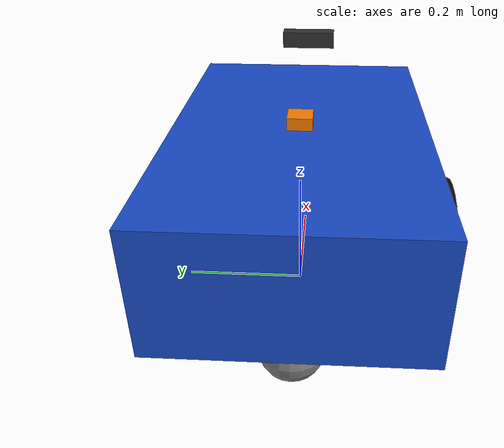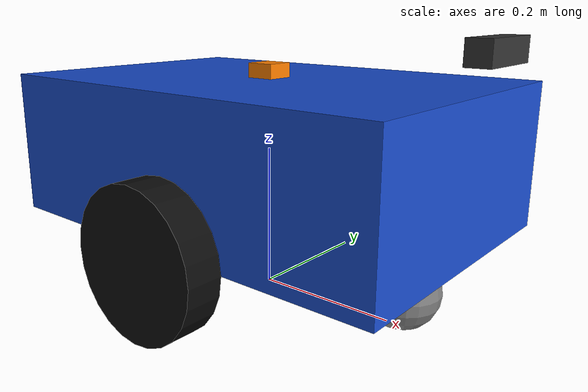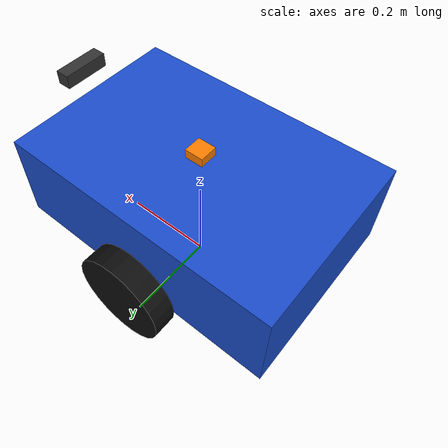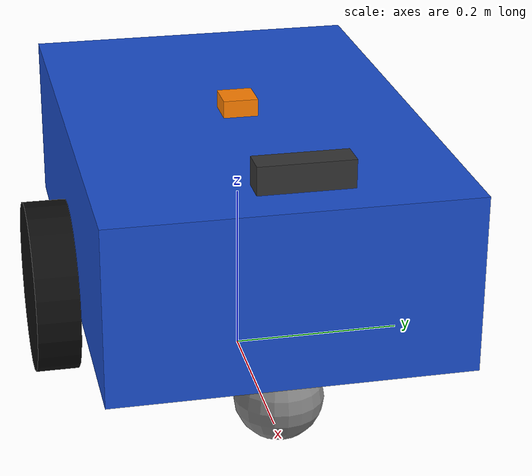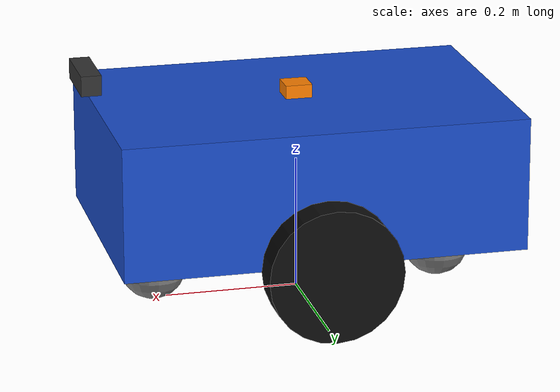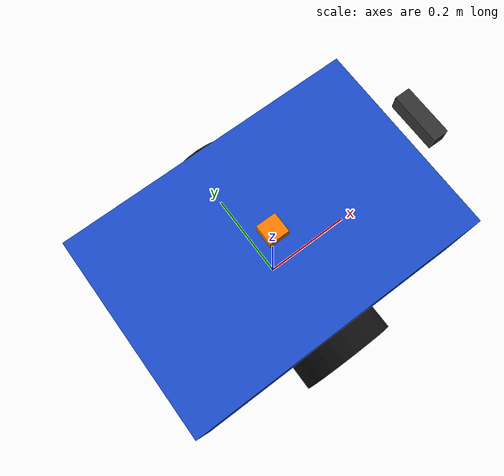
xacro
<?xml version="1.0"?>
<robot name="ugv" xmlns:xacro="http://www.ros.org/wiki/xacro">

    <!-- Base UGV Chassis & Drive Kinematics -->
    <xacro:include filename="$(find ugv_description)/urdf/ugv_base.urdf.xacro" />

    <!-- Vision & Inertial Sensor Modules -->
    <xacro:include filename="$(find ugv_description)/urdf/sensors/camera.urdf.xacro" />
    <xacro:include filename="$(find ugv_description)/urdf/sensors/imu.urdf.xacro" />

</robot>

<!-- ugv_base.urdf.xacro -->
<robot xmlns:xacro="http://www.ros.org/wiki/xacro">

    <xacro:property name="base_length" value="0.6" />
    <xacro:property name="base_width" value="0.4" />
    <xacro:property name="base_height" value="0.2" />
    <xacro:property name="wheel_radius" value="0.1" />
    <xacro:property name="wheel_length" value="0.05" />
    <xacro:property name="wheel_separation" value="0.45" />

    <!-- base_footprint is the 2D projection on the ground -->
    <link name="base_footprint" />

    <link name="base_link">
        <visual>
            <geometry>
                <box size="${base_length} ${base_width} ${base_height}" />
            </geometry>
            <material name="blue">
                <color rgba="0.1 0.3 0.8 1.0" />
            </material>
        </visual>
        <collision>
            <geometry>
                <box size="${base_length} ${base_width} ${base_height}" />
            </geometry>
        </collision>
        <inertial>
            <mass value="15.0" />
            <origin xyz="0 0 0" rpy="0 0 0" />
            <inertia ixx="${(15.0/12.0) * (base_width*base_width + base_height*base_height)}" ixy="0" ixz="0"
                     iyy="${(15.0/12.0) * (base_length*base_length + base_height*base_height)}" iyz="0"
                     izz="${(15.0/12.0) * (base_length*base_length + base_width*base_width)}" />
        </inertial>
    </link>

    <joint name="base_joint" type="fixed">
        <parent link="base_footprint" />
        <child link="base_link" />
        <origin xyz="0 0 ${wheel_radius + base_height / 2.0}" rpy="0 0 0" />
    </joint>

    <!-- Macro for Drive Wheels -->
    <xacro:macro name="wheel" params="prefix y_offset">
        <link name="${prefix}_wheel_link">
            <visual>
                <geometry>
                    <cylinder radius="${wheel_radius}" length="${wheel_length}" />
                </geometry>
                <material name="black">
                    <color rgba="0.05 0.05 0.05 1.0" />
                </material>
            </visual>
            <collision>
                <geometry>
                    <cylinder radius="${wheel_radius}" length="${wheel_length}" />
                </geometry>
            </collision>
            <inertial>
                <mass value="2.0" />
                <origin xyz="0 0 0" rpy="0 0 0" />
                <inertia ixx="${(2.0/12.0)*(3*wheel_radius*wheel_radius + wheel_length*wheel_length)}" ixy="0" ixz="0"
                         iyy="${(2.0/12.0)*(3*wheel_radius*wheel_radius + wheel_length*wheel_length)}" iyz="0"
                         izz="${0.5 * 2.0 * wheel_radius * wheel_radius}" />
            </inertial>
        </link>

        <joint name="${prefix}_wheel_joint" type="continuous">
            <parent link="base_link" />
            <child link="${prefix}_wheel_link" />
            <origin xyz="0 ${y_offset} ${-base_height / 2.0}" rpy="${-pi/2} 0 0" />
            <axis xyz="0 0 1" />
        </joint>

        <gazebo reference="${prefix}_wheel_link">
            <mu1>1.2</mu1>
            <mu2>1.2</mu2>
            <kp>1000000.0</kp>
            <kd>100.0</kd>
        </gazebo>
    </xacro:macro>

    <xacro:wheel prefix="left" y_offset="${wheel_separation / 2.0}" />
    <xacro:wheel prefix="right" y_offset="${-wheel_separation / 2.0}" />

    <!-- Macro for Caster Wheels (Front & Rear) -->
    <xacro:macro name="caster" params="prefix x_offset">
        <link name="${prefix}_caster_wheel_link">
            <visual>
                <geometry>
                    <sphere radius="${wheel_radius / 2.0}" />
                </geometry>
                <material name="grey">
                    <color rgba="0.5 0.5 0.5 1.0" />
                </material>
            </visual>
            <collision>
                <geometry>
                    <sphere radius="${wheel_radius / 2.0}" />
                </geometry>
            </collision>
            <inertial>
                <mass value="0.5" />
                <origin xyz="0 0 0" rpy="0 0 0" />
                <inertia ixx="0.001" ixy="0" ixz="0" iyy="0.001" iyz="0" izz="0.001" />
            </inertial>
        </link>

        <joint name="${prefix}_caster_wheel_joint" type="fixed">
            <parent link="base_link" />
            <child link="${prefix}_caster_wheel_link" />
            <origin xyz="${x_offset} 0 ${-base_height / 2.0 - wheel_radius / 2.0}" rpy="0 0 0" />
        </joint>

        <gazebo reference="${prefix}_caster_wheel_link">
            <mu1>0.05</mu1>
            <mu2>0.05</mu2>
        </gazebo>
    </xacro:macro>

    <xacro:caster prefix="front" x_offset="${base_length / 2.0 - 0.08}" />
    <xacro:caster prefix="rear" x_offset="${-base_length / 2.0 + 0.08}" />

    <!-- Gazebo Harmonic Diff-Drive System Plugin -->
    <gazebo>
        <plugin filename="gz-sim-diff-drive-system" name="gz::sim::systems::DiffDrive">
            <left_joint>left_wheel_joint</left_joint>
            <right_joint>right_wheel_joint</right_joint>
            <wheel_separation>${wheel_separation}</wheel_separation>
            <wheel_radius>${wheel_radius}</wheel_radius>
            <max_linear_acceleration>2.0</max_linear_acceleration>
            <min_linear_acceleration>-2.0</min_linear_acceleration>
            <max_angular_acceleration>3.0</max_angular_acceleration>
            <min_angular_acceleration>-3.0</min_angular_acceleration>
            <max_linear_velocity>1.5</max_linear_velocity>
            <min_linear_velocity>-1.5</min_linear_velocity>
            <max_angular_velocity>2.0</max_angular_velocity>
            <min_angular_velocity>-2.0</min_angular_velocity>
            <topic>/cmd_vel</topic>
            <odom_topic>/diff_drive_controller/odom</odom_topic>
            <tf_topic>/model/ugv/tf</tf_topic>
            <frame_id>odom</frame_id>
            <child_frame_id>base_footprint</child_frame_id>
        </plugin>
    </gazebo>

    <!-- Gazebo Harmonic Joint State Publisher Plugin -->
    <gazebo>
        <plugin filename="gz-sim-joint-state-publisher-system" name="gz::sim::systems::JointStatePublisher">
            <joint_name>left_wheel_joint</joint_name>
            <joint_name>right_wheel_joint</joint_name>
            <topic>/joint_states</topic>
        </plugin>
    </gazebo>

</robot>

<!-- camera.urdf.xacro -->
<robot xmlns:xacro="http://www.ros.org/wiki/xacro">

    <xacro:property name="camera_length" value="0.03" />
    <xacro:property name="camera_width" value="0.10" />
    <xacro:property name="camera_height" value="0.03" />

    <link name="camera_link">
        <visual>
            <geometry>
                <box size="${camera_length} ${camera_width} ${camera_height}" />
            </geometry>
            <material name="dark_grey">
                <color rgba="0.2 0.2 0.2 1.0" />
            </material>
        </visual>
        <collision>
            <geometry>
                <box size="${camera_length} ${camera_width} ${camera_height}" />
            </geometry>
        </collision>
        <inertial>
            <mass value="0.1" />
            <origin xyz="0 0 0" rpy="0 0 0" />
            <inertia ixx="0.0001" ixy="0" ixz="0" iyy="0.0001" iyz="0" izz="0.0001" />
        </inertial>
    </link>

    <joint name="base_camera_joint" type="fixed">
        <parent link="base_link" />
        <child link="camera_link" />
        <origin xyz="${base_length / 2.0 + camera_length / 2.0} 0 ${base_height / 2.0 + 0.05}" rpy="0 0 0" />
    </joint>

    <!-- Standard ROS optical frame convention (X forward -> Z forward, Y left -> -X left, Z up -> -Y down) -->
    <link name="camera_link_optical" />

    <joint name="camera_optical_joint" type="fixed">
        <origin xyz="0 0 0" rpy="${-pi/2} 0 ${-pi/2}" />
        <parent link="camera_link" />
        <child link="camera_link_optical" />
    </joint>

    <gazebo reference="camera_link">
        <sensor name="camera" type="camera">
            <camera>
                <horizontal_fov>1.3962634</horizontal_fov>
                <image>
                    <width>640</width>
                    <height>480</height>
                    <format>R8G8B8</format>
                </image>
                <clip>
                    <near>0.1</near>
                    <far>25.0</far>
                </clip>
                <noise>
                    <type>gaussian</type>
                    <mean>0.0</mean>
                    <stddev>0.005</stddev>
                </noise>
                <optical_frame_id>camera_link_optical</optical_frame_id>
                <camera_info_topic>camera/camera_info</camera_info_topic>
            </camera>
            <always_on>1</always_on>
            <update_rate>30</update_rate>
            <visualize>true</visualize>
            <topic>camera/image_raw</topic>
        </sensor>
    </gazebo>

</robot>

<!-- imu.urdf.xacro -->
<robot xmlns:xacro="http://www.ros.org/wiki/xacro">

    <xacro:property name="imu_size" value="0.04" />

    <link name="imu_link">
        <visual>
            <geometry>
                <box size="${imu_size} ${imu_size} 0.02" />
            </geometry>
            <material name="orange">
                <color rgba="1.0 0.5 0.0 1.0" />
            </material>
        </visual>
        <collision>
            <geometry>
                <box size="${imu_size} ${imu_size} 0.02" />
            </geometry>
        </collision>
        <inertial>
            <mass value="0.05" />
            <origin xyz="0 0 0" rpy="0 0 0" />
            <inertia ixx="0.00001" ixy="0" ixz="0" iyy="0.00001" iyz="0" izz="0.00001" />
        </inertial>
    </link>

    <joint name="base_imu_joint" type="fixed">
        <parent link="base_link" />
        <child link="imu_link" />
        <origin xyz="0 0 ${base_height / 2.0 + 0.01}" rpy="0 0 0" />
    </joint>

    <gazebo reference="imu_link">
        <sensor name="imu" type="imu">
            <topic>imu/data</topic>
            <update_rate>50</update_rate>
            <always_on>1</always_on>
            <visualize>false</visualize>
            <imu>
                <angular_velocity>
                    <x>
                        <noise type="gaussian">
                            <mean>0.0</mean>
                            <stddev>0.005</stddev>
                        </noise>
                    </x>
                    <y>
                        <noise type="gaussian">
                            <mean>0.0</mean>
                            <stddev>0.005</stddev>
                        </noise>
                    </y>
                    <z>
                        <noise type="gaussian">
                            <mean>0.0</mean>
                            <stddev>0.005</stddev>
                        </noise>
                    </z>
                </angular_velocity>
                <linear_acceleration>
                    <x>
                        <noise type="gaussian">
                            <mean>0.0</mean>
                            <stddev>0.05</stddev>
                        </noise>
                    </x>
                    <y>
                        <noise type="gaussian">
                            <mean>0.0</mean>
                            <stddev>0.05</stddev>
                        </noise>
                    </y>
                    <z>
                        <noise type="gaussian">
                            <mean>0.0</mean>
                            <stddev>0.05</stddev>
                        </noise>
                    </z>
                </linear_acceleration>
            </imu>
            <frame_id>imu_link</frame_id>
        </sensor>
    </gazebo>

</robot>
